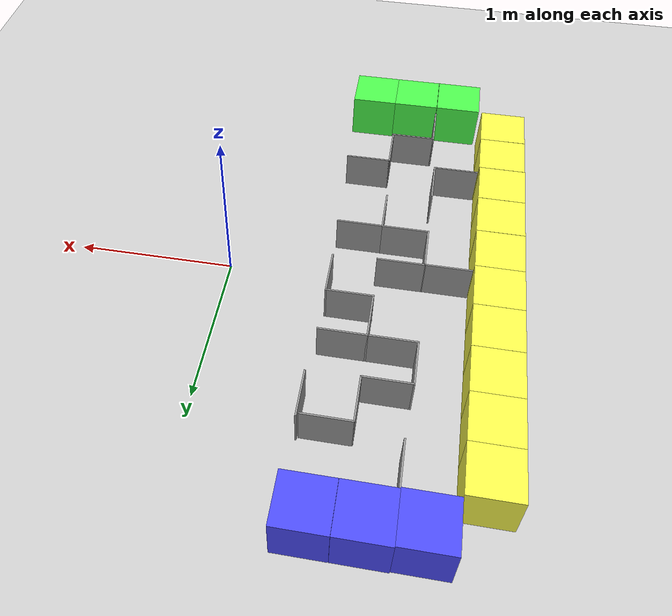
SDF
<sdf version="1.6">
 <world name="default">
  <model name="ground_plane">
   <static>1</static>
   <link name="link">
    <collision name="collision">
     <geometry><plane><normal>0 0 1</normal><size>100 100</size></plane></geometry>
     <surface><friction><ode><mu>100</mu><mu2>50</mu2></ode></friction></surface>
    </collision>
    <visual name="visual">
     <cast_shadows>0</cast_shadows>
     <geometry><plane><normal>0 0 1</normal><size>100 100</size></plane></geometry>
     <material>
      <script><uri>file://media/materials/scripts/gazebo.material</uri><name>Gazebo/Grey</name></script>
     </material>
    </visual>
   </link>
  </model>
  <model name="Box_Yellow">
   <link name="link_0">
    <inertial>
     <mass>1</mass>
     <inertia>
      <ixx>0.166667</ixx>
      <ixy>0</ixy>
      <ixz>0</ixz>
      <iyy>0.166667</iyy>
      <iyz>0</iyz>
      <izz>0.166667</izz>
     </inertia>
    </inertial>
    <visual name="visual">
     <geometry><box><size>0.3 0.3 0.3</size></box></geometry>
     <material>
      <lighting>1</lighting>
      <script><uri>file://media/materials/scripts/gazebo.material</uri><name>Gazebo/Grey</name></script>
      <ambient>1 1 0.3 1</ambient>
      <diffuse>0.7 0.7 0.7 1</diffuse>
      <specular>0.01 0.01 0.01 1</specular>
      <emissive>0 0 0 1</emissive>
      <shader type="vertex"><normal_map>__default__</normal_map></shader>
     </material>
    </visual>
    <collision name="collision">
     <geometry><box><size>0.3 0.3 0.3</size></box></geometry>
     <surface>
      <friction>
       <ode><mu>1</mu><mu2>1</mu2><fdir1>0 0 0</fdir1><slip1>0</slip1><slip2>0</slip2></ode>
       <torsional>
        <coefficient>1</coefficient>
        <patch_radius>0</patch_radius>
        <surface_radius>0</surface_radius>
        <use_patch_radius>1</use_patch_radius>
        <ode><slip>0</slip></ode>
       </torsional>
      </friction>
      <bounce><restitution_coefficient>0</restitution_coefficient><threshold>1e+06</threshold></bounce>
      <contact>
       <collide_without_contact>0</collide_without_contact>
       <collide_without_contact_bitmask>1</collide_without_contact_bitmask>
       <collide_bitmask>1</collide_bitmask>
       <ode>
        <soft_cfm>0</soft_cfm>
        <soft_erp>0.2</soft_erp>
        <kp>1e+13</kp>
        <kd>1</kd>
        <max_vel>0.01</max_vel>
        <min_depth>0</min_depth>
       </ode>
       <bullet>
        <split_impulse>1</split_impulse>
        <split_impulse_penetration_threshold>-0.01</split_impulse_penetration_threshold>
        <soft_cfm>0</soft_cfm>
        <soft_erp>0.2</soft_erp>
        <kp>1e+13</kp>
        <kd>1</kd>
       </bullet>
      </contact>
     </surface>
    </collision>
   </link>
   <static>0</static>
   <pose>-1.66342 -1.35735 0.15 0 -0 -0.001735</pose>
  </model>
  <model name="Box_Green_clone_5">
   <link name="link_0">
    <inertial>
     <mass>1</mass>
     <inertia>
      <ixx>0.166667</ixx>
      <ixy>0</ixy>
      <ixz>0</ixz>
      <iyy>0.166667</iyy>
      <iyz>0</iyz>
      <izz>0.166667</izz>
     </inertia>
    </inertial>
    <visual name="visual">
     <geometry><box><size>0.3 0.3 0.3</size></box></geometry>
     <material>
      <lighting>1</lighting>
      <script><uri>file://media/materials/scripts/gazebo.material</uri><name>Gazebo/Grey</name></script>
      <ambient>0.3 1 0.3 1</ambient>
      <diffuse>0.7 0.7 0.7 1</diffuse>
      <specular>0.01 0.01 0.01 1</specular>
      <emissive>0 0 0 1</emissive>
      <shader type="vertex"><normal_map>__default__</normal_map></shader>
     </material>
    </visual>
    <collision name="collision">
     <geometry><box><size>0.3 0.3 0.3</size></box></geometry>
     <surface>
      <friction>
       <ode><mu>1</mu><mu2>1</mu2><fdir1>0 0 0</fdir1><slip1>0</slip1><slip2>0</slip2></ode>
       <torsional>
        <coefficient>1</coefficient>
        <patch_radius>0</patch_radius>
        <surface_radius>0</surface_radius>
        <use_patch_radius>1</use_patch_radius>
        <ode><slip>0</slip></ode>
       </torsional>
      </friction>
      <bounce><restitution_coefficient>0</restitution_coefficient><threshold>1e+06</threshold></bounce>
      <contact>
       <collide_without_contact>0</collide_without_contact>
       <collide_without_contact_bitmask>1</collide_without_contact_bitmask>
       <collide_bitmask>1</collide_bitmask>
       <ode>
        <soft_cfm>0</soft_cfm>
        <soft_erp>0.2</soft_erp>
        <kp>1e+13</kp>
        <kd>1</kd>
        <max_vel>0.01</max_vel>
        <min_depth>0</min_depth>
       </ode>
       <bullet>
        <split_impulse>1</split_impulse>
        <split_impulse_penetration_threshold>-0.01</split_impulse_penetration_threshold>
        <soft_cfm>0</soft_cfm>
        <soft_erp>0.2</soft_erp>
        <kp>1e+13</kp>
        <kd>1</kd>
       </bullet>
      </contact>
     </surface>
    </collision>
   </link>
   <static>0</static>
   <pose>-0.740618 -1.65773 0.15 0 -0 0.000345</pose>
  </model>
  <model name="Box_Green_clone_6">
   <link name="link_0">
    <inertial>
     <mass>1</mass>
     <inertia>
      <ixx>0.166667</ixx>
      <ixy>0</ixy>
      <ixz>0</ixz>
      <iyy>0.166667</iyy>
      <iyz>0</iyz>
      <izz>0.166667</izz>
     </inertia>
    </inertial>
    <visual name="visual">
     <geometry><box><size>0.3 0.3 0.3</size></box></geometry>
     <material>
      <lighting>1</lighting>
      <script><uri>file://media/materials/scripts/gazebo.material</uri><name>Gazebo/Grey</name></script>
      <ambient>0.3 1 0.3 1</ambient>
      <diffuse>0.7 0.7 0.7 1</diffuse>
      <specular>0.01 0.01 0.01 1</specular>
      <emissive>0 0 0 1</emissive>
      <shader type="vertex"><normal_map>__default__</normal_map></shader>
     </material>
    </visual>
    <collision name="collision">
     <geometry><box><size>0.3 0.3 0.3</size></box></geometry>
     <surface>
      <friction>
       <ode><mu>1</mu><mu2>1</mu2><fdir1>0 0 0</fdir1><slip1>0</slip1><slip2>0</slip2></ode>
       <torsional>
        <coefficient>1</coefficient>
        <patch_radius>0</patch_radius>
        <surface_radius>0</surface_radius>
        <use_patch_radius>1</use_patch_radius>
        <ode><slip>0</slip></ode>
       </torsional>
      </friction>
      <bounce><restitution_coefficient>0</restitution_coefficient><threshold>1e+06</threshold></bounce>
      <contact>
       <collide_without_contact>0</collide_without_contact>
       <collide_without_contact_bitmask>1</collide_without_contact_bitmask>
       <collide_bitmask>1</collide_bitmask>
       <ode>
        <soft_cfm>0</soft_cfm>
        <soft_erp>0.2</soft_erp>
        <kp>1e+13</kp>
        <kd>1</kd>
        <max_vel>0.01</max_vel>
        <min_depth>0</min_depth>
       </ode>
       <bullet>
        <split_impulse>1</split_impulse>
        <split_impulse_penetration_threshold>-0.01</split_impulse_penetration_threshold>
        <soft_cfm>0</soft_cfm>
        <soft_erp>0.2</soft_erp>
        <kp>1e+13</kp>
        <kd>1</kd>
       </bullet>
      </contact>
     </surface>
    </collision>
   </link>
   <static>0</static>
   <pose>-1.04062 -1.65808 0.15 0 -0 0.000344</pose>
  </model>
  <model name="Box_Yellow_clone">
   <link name="link_0">
    <inertial>
     <mass>1</mass>
     <inertia>
      <ixx>0.166667</ixx>
      <ixy>0</ixy>
      <ixz>0</ixz>
      <iyy>0.166667</iyy>
      <iyz>0</iyz>
      <izz>0.166667</izz>
     </inertia>
    </inertial>
    <visual name="visual">
     <geometry><box><size>0.3 0.3 0.3</size></box></geometry>
     <material>
      <lighting>1</lighting>
      <script><uri>file://media/materials/scripts/gazebo.material</uri><name>Gazebo/Grey</name></script>
      <ambient>1 1 0.3 1</ambient>
      <diffuse>0.7 0.7 0.7 1</diffuse>
      <specular>0.01 0.01 0.01 1</specular>
      <emissive>0 0 0 1</emissive>
      <shader type="vertex"><normal_map>__default__</normal_map></shader>
     </material>
    </visual>
    <collision name="collision">
     <geometry><box><size>0.3 0.3 0.3</size></box></geometry>
     <surface>
      <friction>
       <ode><mu>1</mu><mu2>1</mu2><fdir1>0 0 0</fdir1><slip1>0</slip1><slip2>0</slip2></ode>
       <torsional>
        <coefficient>1</coefficient>
        <patch_radius>0</patch_radius>
        <surface_radius>0</surface_radius>
        <use_patch_radius>1</use_patch_radius>
        <ode><slip>0</slip></ode>
       </torsional>
      </friction>
      <bounce><restitution_coefficient>0</restitution_coefficient><threshold>1e+06</threshold></bounce>
      <contact>
       <collide_without_contact>0</collide_without_contact>
       <collide_without_contact_bitmask>1</collide_without_contact_bitmask>
       <collide_bitmask>1</collide_bitmask>
       <ode>
        <soft_cfm>0</soft_cfm>
        <soft_erp>0.2</soft_erp>
        <kp>1e+13</kp>
        <kd>1</kd>
        <max_vel>0.01</max_vel>
        <min_depth>0</min_depth>
       </ode>
       <bullet>
        <split_impulse>1</split_impulse>
        <split_impulse_penetration_threshold>-0.01</split_impulse_penetration_threshold>
        <soft_cfm>0</soft_cfm>
        <soft_erp>0.2</soft_erp>
        <kp>1e+13</kp>
        <kd>1</kd>
       </bullet>
      </contact>
     </surface>
    </collision>
   </link>
   <static>0</static>
   <pose>-1.66313 -1.05692 0.15 0 0 -0.004486</pose>
  </model>
  <model name="Box_Yellow_clone_0">
   <link name="link_0">
    <inertial>
     <mass>1</mass>
     <inertia>
      <ixx>0.166667</ixx>
      <ixy>0</ixy>
      <ixz>0</ixz>
      <iyy>0.166667</iyy>
      <iyz>0</iyz>
      <izz>0.166667</izz>
     </inertia>
    </inertial>
    <visual name="visual">
     <geometry><box><size>0.3 0.3 0.3</size></box></geometry>
     <material>
      <lighting>1</lighting>
      <script><uri>file://media/materials/scripts/gazebo.material</uri><name>Gazebo/Grey</name></script>
      <ambient>1 1 0.3 1</ambient>
      <diffuse>0.7 0.7 0.7 1</diffuse>
      <specular>0.01 0.01 0.01 1</specular>
      <emissive>0 0 0 1</emissive>
      <shader type="vertex"><normal_map>__default__</normal_map></shader>
     </material>
    </visual>
    <collision name="collision">
     <geometry><box><size>0.3 0.3 0.3</size></box></geometry>
     <surface>
      <friction>
       <ode><mu>1</mu><mu2>1</mu2><fdir1>0 0 0</fdir1><slip1>0</slip1><slip2>0</slip2></ode>
       <torsional>
        <coefficient>1</coefficient>
        <patch_radius>0</patch_radius>
        <surface_radius>0</surface_radius>
        <use_patch_radius>1</use_patch_radius>
        <ode><slip>0</slip></ode>
       </torsional>
      </friction>
      <bounce><restitution_coefficient>0</restitution_coefficient><threshold>1e+06</threshold></bounce>
      <contact>
       <collide_without_contact>0</collide_without_contact>
       <collide_without_contact_bitmask>1</collide_without_contact_bitmask>
       <collide_bitmask>1</collide_bitmask>
       <ode>
        <soft_cfm>0</soft_cfm>
        <soft_erp>0.2</soft_erp>
        <kp>1e+13</kp>
        <kd>1</kd>
        <max_vel>0.01</max_vel>
        <min_depth>0</min_depth>
       </ode>
       <bullet>
        <split_impulse>1</split_impulse>
        <split_impulse_penetration_threshold>-0.01</split_impulse_penetration_threshold>
        <soft_cfm>0</soft_cfm>
        <soft_erp>0.2</soft_erp>
        <kp>1e+13</kp>
        <kd>1</kd>
       </bullet>
      </contact>
     </surface>
    </collision>
   </link>
   <static>0</static>
   <pose>-1.66556 -0.756814 0.15 -0 -0 -0.005116</pose>
  </model>
  <model name="Box_Yellow_clone_1">
   <link name="link_0">
    <inertial>
     <mass>1</mass>
     <inertia>
      <ixx>0.166667</ixx>
      <ixy>0</ixy>
      <ixz>0</ixz>
      <iyy>0.166667</iyy>
      <iyz>0</iyz>
      <izz>0.166667</izz>
     </inertia>
    </inertial>
    <visual name="visual">
     <geometry><box><size>0.3 0.3 0.3</size></box></geometry>
     <material>
      <lighting>1</lighting>
      <script><uri>file://media/materials/scripts/gazebo.material</uri><name>Gazebo/Grey</name></script>
      <ambient>1 1 0.3 1</ambient>
      <diffuse>0.7 0.7 0.7 1</diffuse>
      <specular>0.01 0.01 0.01 1</specular>
      <emissive>0 0 0 1</emissive>
      <shader type="vertex"><normal_map>__default__</normal_map></shader>
     </material>
    </visual>
    <collision name="collision">
     <geometry><box><size>0.3 0.3 0.3</size></box></geometry>
     <surface>
      <friction>
       <ode><mu>1</mu><mu2>1</mu2><fdir1>0 0 0</fdir1><slip1>0</slip1><slip2>0</slip2></ode>
       <torsional>
        <coefficient>1</coefficient>
        <patch_radius>0</patch_radius>
        <surface_radius>0</surface_radius>
        <use_patch_radius>1</use_patch_radius>
        <ode><slip>0</slip></ode>
       </torsional>
      </friction>
      <bounce><restitution_coefficient>0</restitution_coefficient><threshold>1e+06</threshold></bounce>
      <contact>
       <collide_without_contact>0</collide_without_contact>
       <collide_without_contact_bitmask>1</collide_without_contact_bitmask>
       <collide_bitmask>1</collide_bitmask>
       <ode>
        <soft_cfm>0</soft_cfm>
        <soft_erp>0.2</soft_erp>
        <kp>1e+13</kp>
        <kd>1</kd>
        <max_vel>0.01</max_vel>
        <min_depth>0</min_depth>
       </ode>
       <bullet>
        <split_impulse>1</split_impulse>
        <split_impulse_penetration_threshold>-0.01</split_impulse_penetration_threshold>
        <soft_cfm>0</soft_cfm>
        <soft_erp>0.2</soft_erp>
        <kp>1e+13</kp>
        <kd>1</kd>
       </bullet>
      </contact>
     </surface>
    </collision>
   </link>
   <static>0</static>
   <pose>-1.66358 -0.456605 0.15 0 -0 -0.003685</pose>
  </model>
  <model name="Box_Yellow_clone_2">
   <link name="link_0">
    <inertial>
     <mass>1</mass>
     <inertia>
      <ixx>0.166667</ixx>
      <ixy>0</ixy>
      <ixz>0</ixz>
      <iyy>0.166667</iyy>
      <iyz>0</iyz>
      <izz>0.166667</izz>
     </inertia>
    </inertial>
    <visual name="visual">
     <geometry><box><size>0.3 0.3 0.3</size></box></geometry>
     <material>
      <lighting>1</lighting>
      <script><uri>file://media/materials/scripts/gazebo.material</uri><name>Gazebo/Grey</name></script>
      <ambient>1 1 0.3 1</ambient>
      <diffuse>0.7 0.7 0.7 1</diffuse>
      <specular>0.01 0.01 0.01 1</specular>
      <emissive>0 0 0 1</emissive>
      <shader type="vertex"><normal_map>__default__</normal_map></shader>
     </material>
    </visual>
    <collision name="collision">
     <geometry><box><size>0.3 0.3 0.3</size></box></geometry>
     <surface>
      <friction>
       <ode><mu>1</mu><mu2>1</mu2><fdir1>0 0 0</fdir1><slip1>0</slip1><slip2>0</slip2></ode>
       <torsional>
        <coefficient>1</coefficient>
        <patch_radius>0</patch_radius>
        <surface_radius>0</surface_radius>
        <use_patch_radius>1</use_patch_radius>
        <ode><slip>0</slip></ode>
       </torsional>
      </friction>
      <bounce><restitution_coefficient>0</restitution_coefficient><threshold>1e+06</threshold></bounce>
      <contact>
       <collide_without_contact>0</collide_without_contact>
       <collide_without_contact_bitmask>1</collide_without_contact_bitmask>
       <collide_bitmask>1</collide_bitmask>
       <ode>
        <soft_cfm>0</soft_cfm>
        <soft_erp>0.2</soft_erp>
        <kp>1e+13</kp>
        <kd>1</kd>
        <max_vel>0.01</max_vel>
        <min_depth>0</min_depth>
       </ode>
       <bullet>
        <split_impulse>1</split_impulse>
        <split_impulse_penetration_threshold>-0.01</split_impulse_penetration_threshold>
        <soft_cfm>0</soft_cfm>
        <soft_erp>0.2</soft_erp>
        <kp>1e+13</kp>
        <kd>1</kd>
       </bullet>
      </contact>
     </surface>
    </collision>
   </link>
   <static>0</static>
   <pose>-1.66351 -0.156388 0.15 -0 -0 -0.002256</pose>
  </model>
  <model name="Box_Yellow_clone_3">
   <link name="link_0">
    <inertial>
     <mass>1</mass>
     <inertia>
      <ixx>0.166667</ixx>
      <ixy>0</ixy>
      <ixz>0</ixz>
      <iyy>0.166667</iyy>
      <iyz>0</iyz>
      <izz>0.166667</izz>
     </inertia>
    </inertial>
    <visual name="visual">
     <geometry><box><size>0.3 0.3 0.3</size></box></geometry>
     <material>
      <lighting>1</lighting>
      <script><uri>file://media/materials/scripts/gazebo.material</uri><name>Gazebo/Grey</name></script>
      <ambient>1 1 0.3 1</ambient>
      <diffuse>0.7 0.7 0.7 1</diffuse>
      <specular>0.01 0.01 0.01 1</specular>
      <emissive>0 0 0 1</emissive>
      <shader type="vertex"><normal_map>__default__</normal_map></shader>
     </material>
    </visual>
    <collision name="collision">
     <geometry><box><size>0.3 0.3 0.3</size></box></geometry>
     <surface>
      <friction>
       <ode><mu>1</mu><mu2>1</mu2><fdir1>0 0 0</fdir1><slip1>0</slip1><slip2>0</slip2></ode>
       <torsional>
        <coefficient>1</coefficient>
        <patch_radius>0</patch_radius>
        <surface_radius>0</surface_radius>
        <use_patch_radius>1</use_patch_radius>
        <ode><slip>0</slip></ode>
       </torsional>
      </friction>
      <bounce><restitution_coefficient>0</restitution_coefficient><threshold>1e+06</threshold></bounce>
      <contact>
       <collide_without_contact>0</collide_without_contact>
       <collide_without_contact_bitmask>1</collide_without_contact_bitmask>
       <collide_bitmask>1</collide_bitmask>
       <ode>
        <soft_cfm>0</soft_cfm>
        <soft_erp>0.2</soft_erp>
        <kp>1e+13</kp>
        <kd>1</kd>
        <max_vel>0.01</max_vel>
        <min_depth>0</min_depth>
       </ode>
       <bullet>
        <split_impulse>1</split_impulse>
        <split_impulse_penetration_threshold>-0.01</split_impulse_penetration_threshold>
        <soft_cfm>0</soft_cfm>
        <soft_erp>0.2</soft_erp>
        <kp>1e+13</kp>
        <kd>1</kd>
       </bullet>
      </contact>
     </surface>
    </collision>
   </link>
   <static>0</static>
   <pose>-1.66285 0.143677 0.15 0 -0 -0.001826</pose>
  </model>
  <model name="Box_Yellow_clone_4">
   <link name="link_0">
    <inertial>
     <mass>1</mass>
     <inertia>
      <ixx>0.166667</ixx>
      <ixy>0</ixy>
      <ixz>0</ixz>
      <iyy>0.166667</iyy>
      <iyz>0</iyz>
      <izz>0.166667</izz>
     </inertia>
    </inertial>
    <visual name="visual">
     <geometry><box><size>0.3 0.3 0.3</size></box></geometry>
     <material>
      <lighting>1</lighting>
      <script><uri>file://media/materials/scripts/gazebo.material</uri><name>Gazebo/Grey</name></script>
      <ambient>1 1 0.3 1</ambient>
      <diffuse>0.7 0.7 0.7 1</diffuse>
      <specular>0.01 0.01 0.01 1</specular>
      <emissive>0 0 0 1</emissive>
      <shader type="vertex"><normal_map>__default__</normal_map></shader>
     </material>
    </visual>
    <collision name="collision">
     <geometry><box><size>0.3 0.3 0.3</size></box></geometry>
     <surface>
      <friction>
       <ode><mu>1</mu><mu2>1</mu2><fdir1>0 0 0</fdir1><slip1>0</slip1><slip2>0</slip2></ode>
       <torsional>
        <coefficient>1</coefficient>
        <patch_radius>0</patch_radius>
        <surface_radius>0</surface_radius>
        <use_patch_radius>1</use_patch_radius>
        <ode><slip>0</slip></ode>
       </torsional>
      </friction>
      <bounce><restitution_coefficient>0</restitution_coefficient><threshold>1e+06</threshold></bounce>
      <contact>
       <collide_without_contact>0</collide_without_contact>
       <collide_without_contact_bitmask>1</collide_without_contact_bitmask>
       <collide_bitmask>1</collide_bitmask>
       <ode>
        <soft_cfm>0</soft_cfm>
        <soft_erp>0.2</soft_erp>
        <kp>1e+13</kp>
        <kd>1</kd>
        <max_vel>0.01</max_vel>
        <min_depth>0</min_depth>
       </ode>
       <bullet>
        <split_impulse>1</split_impulse>
        <split_impulse_penetration_threshold>-0.01</split_impulse_penetration_threshold>
        <soft_cfm>0</soft_cfm>
        <soft_erp>0.2</soft_erp>
        <kp>1e+13</kp>
        <kd>1</kd>
       </bullet>
      </contact>
     </surface>
    </collision>
   </link>
   <static>0</static>
   <pose>-1.66277 0.443739 0.149998 -5e-06 7e-06 -0.001463</pose>
  </model>
  <model name="Box_Yellow_clone_5">
   <link name="link_0">
    <inertial>
     <mass>1</mass>
     <inertia>
      <ixx>0.166667</ixx>
      <ixy>0</ixy>
      <ixz>0</ixz>
      <iyy>0.166667</iyy>
      <iyz>0</iyz>
      <izz>0.166667</izz>
     </inertia>
    </inertial>
    <visual name="visual">
     <geometry><box><size>0.3 0.3 0.3</size></box></geometry>
     <material>
      <lighting>1</lighting>
      <script><uri>file://media/materials/scripts/gazebo.material</uri><name>Gazebo/Grey</name></script>
      <ambient>1 1 0.3 1</ambient>
      <diffuse>0.7 0.7 0.7 1</diffuse>
      <specular>0.01 0.01 0.01 1</specular>
      <emissive>0 0 0 1</emissive>
      <shader type="vertex"><normal_map>__default__</normal_map></shader>
     </material>
    </visual>
    <collision name="collision">
     <geometry><box><size>0.3 0.3 0.3</size></box></geometry>
     <surface>
      <friction>
       <ode><mu>1</mu><mu2>1</mu2><fdir1>0 0 0</fdir1><slip1>0</slip1><slip2>0</slip2></ode>
       <torsional>
        <coefficient>1</coefficient>
        <patch_radius>0</patch_radius>
        <surface_radius>0</surface_radius>
        <use_patch_radius>1</use_patch_radius>
        <ode><slip>0</slip></ode>
       </torsional>
      </friction>
      <bounce><restitution_coefficient>0</restitution_coefficient><threshold>1e+06</threshold></bounce>
      <contact>
       <collide_without_contact>0</collide_without_contact>
       <collide_without_contact_bitmask>1</collide_without_contact_bitmask>
       <collide_bitmask>1</collide_bitmask>
       <ode>
        <soft_cfm>0</soft_cfm>
        <soft_erp>0.2</soft_erp>
        <kp>1e+13</kp>
        <kd>1</kd>
        <max_vel>0.01</max_vel>
        <min_depth>0</min_depth>
       </ode>
       <bullet>
        <split_impulse>1</split_impulse>
        <split_impulse_penetration_threshold>-0.01</split_impulse_penetration_threshold>
        <soft_cfm>0</soft_cfm>
        <soft_erp>0.2</soft_erp>
        <kp>1e+13</kp>
        <kd>1</kd>
       </bullet>
      </contact>
     </surface>
    </collision>
   </link>
   <static>0</static>
   <pose>-1.66285 0.743811 0.15 0 -0 -0.001002</pose>
  </model>
  <model name="Box_Yellow_clone_6">
   <link name="link_0">
    <inertial>
     <mass>1</mass>
     <inertia>
      <ixx>0.166667</ixx>
      <ixy>0</ixy>
      <ixz>0</ixz>
      <iyy>0.166667</iyy>
      <iyz>0</iyz>
      <izz>0.166667</izz>
     </inertia>
    </inertial>
    <visual name="visual">
     <geometry><box><size>0.3 0.3 0.3</size></box></geometry>
     <material>
      <lighting>1</lighting>
      <script><uri>file://media/materials/scripts/gazebo.material</uri><name>Gazebo/Grey</name></script>
      <ambient>1 1 0.3 1</ambient>
      <diffuse>0.7 0.7 0.7 1</diffuse>
      <specular>0.01 0.01 0.01 1</specular>
      <emissive>0 0 0 1</emissive>
      <shader type="vertex"><normal_map>__default__</normal_map></shader>
     </material>
    </visual>
    <collision name="collision">
     <geometry><box><size>0.3 0.3 0.3</size></box></geometry>
     <surface>
      <friction>
       <ode><mu>1</mu><mu2>1</mu2><fdir1>0 0 0</fdir1><slip1>0</slip1><slip2>0</slip2></ode>
       <torsional>
        <coefficient>1</coefficient>
        <patch_radius>0</patch_radius>
        <surface_radius>0</surface_radius>
        <use_patch_radius>1</use_patch_radius>
        <ode><slip>0</slip></ode>
       </torsional>
      </friction>
      <bounce><restitution_coefficient>0</restitution_coefficient><threshold>1e+06</threshold></bounce>
      <contact>
       <collide_without_contact>0</collide_without_contact>
       <collide_without_contact_bitmask>1</collide_without_contact_bitmask>
       <collide_bitmask>1</collide_bitmask>
       <ode>
        <soft_cfm>0</soft_cfm>
        <soft_erp>0.2</soft_erp>
        <kp>1e+13</kp>
        <kd>1</kd>
        <max_vel>0.01</max_vel>
        <min_depth>0</min_depth>
       </ode>
       <bullet>
        <split_impulse>1</split_impulse>
        <split_impulse_penetration_threshold>-0.01</split_impulse_penetration_threshold>
        <soft_cfm>0</soft_cfm>
        <soft_erp>0.2</soft_erp>
        <kp>1e+13</kp>
        <kd>1</kd>
       </bullet>
      </contact>
     </surface>
    </collision>
   </link>
   <static>0</static>
   <pose>-1.66287 1.04381 0.15 -0 -0 -0.001002</pose>
  </model>
  <model name="Box_Yellow_clone_7">
   <link name="link_0">
    <inertial>
     <mass>1</mass>
     <inertia>
      <ixx>0.166667</ixx>
      <ixy>0</ixy>
      <ixz>0</ixz>
      <iyy>0.166667</iyy>
      <iyz>0</iyz>
      <izz>0.166667</izz>
     </inertia>
    </inertial>
    <visual name="visual">
     <geometry><box><size>0.3 0.3 0.3</size></box></geometry>
     <material>
      <lighting>1</lighting>
      <script><uri>file://media/materials/scripts/gazebo.material</uri><name>Gazebo/Grey</name></script>
      <ambient>1 1 0.3 1</ambient>
      <diffuse>0.7 0.7 0.7 1</diffuse>
      <specular>0.01 0.01 0.01 1</specular>
      <emissive>0 0 0 1</emissive>
      <shader type="vertex"><normal_map>__default__</normal_map></shader>
     </material>
    </visual>
    <collision name="collision">
     <geometry><box><size>0.3 0.3 0.3</size></box></geometry>
     <surface>
      <friction>
       <ode><mu>1</mu><mu2>1</mu2><fdir1>0 0 0</fdir1><slip1>0</slip1><slip2>0</slip2></ode>
       <torsional>
        <coefficient>1</coefficient>
        <patch_radius>0</patch_radius>
        <surface_radius>0</surface_radius>
        <use_patch_radius>1</use_patch_radius>
        <ode><slip>0</slip></ode>
       </torsional>
      </friction>
      <bounce><restitution_coefficient>0</restitution_coefficient><threshold>1e+06</threshold></bounce>
      <contact>
       <collide_without_contact>0</collide_without_contact>
       <collide_without_contact_bitmask>1</collide_without_contact_bitmask>
       <collide_bitmask>1</collide_bitmask>
       <ode>
        <soft_cfm>0</soft_cfm>
        <soft_erp>0.2</soft_erp>
        <kp>1e+13</kp>
        <kd>1</kd>
        <max_vel>0.01</max_vel>
        <min_depth>0</min_depth>
       </ode>
       <bullet>
        <split_impulse>1</split_impulse>
        <split_impulse_penetration_threshold>-0.01</split_impulse_penetration_threshold>
        <soft_cfm>0</soft_cfm>
        <soft_erp>0.2</soft_erp>
        <kp>1e+13</kp>
        <kd>1</kd>
       </bullet>
      </contact>
     </surface>
    </collision>
   </link>
   <static>0</static>
   <pose>-1.66267 1.34384 0.15 -0 -0 -0.000887</pose>
  </model>
  <model name="Box_Blue_clone_5">
   <link name="link_0">
    <inertial>
     <mass>1</mass>
     <inertia>
      <ixx>0.166667</ixx>
      <ixy>0</ixy>
      <ixz>0</ixz>
      <iyy>0.166667</iyy>
      <iyz>0</iyz>
      <izz>0.166667</izz>
     </inertia>
    </inertial>
    <visual name="visual">
     <geometry><box><size>0.3 0.3 0.3</size></box></geometry>
     <material>
      <lighting>1</lighting>
      <script><uri>file://media/materials/scripts/gazebo.material</uri><name>Gazebo/Grey</name></script>
      <ambient>0.3 0.3 1 1</ambient>
      <diffuse>0.7 0.7 0.7 1</diffuse>
      <specular>0.01 0.01 0.01 1</specular>
      <emissive>0 0 0 1</emissive>
      <shader type="vertex"><normal_map>__default__</normal_map></shader>
     </material>
    </visual>
    <collision name="collision">
     <geometry><box><size>0.3 0.3 0.3</size></box></geometry>
     <surface>
      <friction>
       <ode><mu>1</mu><mu2>1</mu2><fdir1>0 0 0</fdir1><slip1>0</slip1><slip2>0</slip2></ode>
       <torsional>
        <coefficient>1</coefficient>
        <patch_radius>0</patch_radius>
        <surface_radius>0</surface_radius>
        <use_patch_radius>1</use_patch_radius>
        <ode><slip>0</slip></ode>
       </torsional>
      </friction>
      <bounce><restitution_coefficient>0</restitution_coefficient><threshold>1e+06</threshold></bounce>
      <contact>
       <collide_without_contact>0</collide_without_contact>
       <collide_without_contact_bitmask>1</collide_without_contact_bitmask>
       <collide_bitmask>1</collide_bitmask>
       <ode>
        <soft_cfm>0</soft_cfm>
        <soft_erp>0.2</soft_erp>
        <kp>1e+13</kp>
        <kd>1</kd>
        <max_vel>0.01</max_vel>
        <min_depth>0</min_depth>
       </ode>
       <bullet>
        <split_impulse>1</split_impulse>
        <split_impulse_penetration_threshold>-0.01</split_impulse_penetration_threshold>
        <soft_cfm>0</soft_cfm>
        <soft_erp>0.2</soft_erp>
        <kp>1e+13</kp>
        <kd>1</kd>
       </bullet>
      </contact>
     </surface>
    </collision>
   </link>
   <static>0</static>
   <pose>-0.759835 1.66238 0.15 -2e-06 -2e-06 0.001501</pose>
  </model>
  <model name="Box_Blue_clone_6">
   <link name="link_0">
    <inertial>
     <mass>1</mass>
     <inertia>
      <ixx>0.166667</ixx>
      <ixy>0</ixy>
      <ixz>0</ixz>
      <iyy>0.166667</iyy>
      <iyz>0</iyz>
      <izz>0.166667</izz>
     </inertia>
    </inertial>
    <visual name="visual">
     <geometry><box><size>0.3 0.3 0.3</size></box></geometry>
     <material>
      <lighting>1</lighting>
      <script><uri>file://media/materials/scripts/gazebo.material</uri><name>Gazebo/Grey</name></script>
      <ambient>0.3 0.3 1 1</ambient>
      <diffuse>0.7 0.7 0.7 1</diffuse>
      <specular>0.01 0.01 0.01 1</specular>
      <emissive>0 0 0 1</emissive>
      <shader type="vertex"><normal_map>__default__</normal_map></shader>
     </material>
    </visual>
    <collision name="collision">
     <geometry><box><size>0.3 0.3 0.3</size></box></geometry>
     <surface>
      <friction>
       <ode><mu>1</mu><mu2>1</mu2><fdir1>0 0 0</fdir1><slip1>0</slip1><slip2>0</slip2></ode>
       <torsional>
        <coefficient>1</coefficient>
        <patch_radius>0</patch_radius>
        <surface_radius>0</surface_radius>
        <use_patch_radius>1</use_patch_radius>
        <ode><slip>0</slip></ode>
       </torsional>
      </friction>
      <bounce><restitution_coefficient>0</restitution_coefficient><threshold>1e+06</threshold></bounce>
      <contact>
       <collide_without_contact>0</collide_without_contact>
       <collide_without_contact_bitmask>1</collide_without_contact_bitmask>
       <collide_bitmask>1</collide_bitmask>
       <ode>
        <soft_cfm>0</soft_cfm>
        <soft_erp>0.2</soft_erp>
        <kp>1e+13</kp>
        <kd>1</kd>
        <max_vel>0.01</max_vel>
        <min_depth>0</min_depth>
       </ode>
       <bullet>
        <split_impulse>1</split_impulse>
        <split_impulse_penetration_threshold>-0.01</split_impulse_penetration_threshold>
        <soft_cfm>0</soft_cfm>
        <soft_erp>0.2</soft_erp>
        <kp>1e+13</kp>
        <kd>1</kd>
       </bullet>
      </contact>
     </surface>
    </collision>
   </link>
   <static>0</static>
   <pose>-1.06049 1.6615 0.15 0 -0 0.001043</pose>
  </model>
  <model name="Box_Blue_clone_7">
   <link name="link_0">
    <inertial>
     <mass>1</mass>
     <inertia>
      <ixx>0.166667</ixx>
      <ixy>0</ixy>
      <ixz>0</ixz>
      <iyy>0.166667</iyy>
      <iyz>0</iyz>
      <izz>0.166667</izz>
     </inertia>
    </inertial>
    <visual name="visual">
     <geometry><box><size>0.3 0.3 0.3</size></box></geometry>
     <material>
      <lighting>1</lighting>
      <script><uri>file://media/materials/scripts/gazebo.material</uri><name>Gazebo/Grey</name></script>
      <ambient>0.3 0.3 1 1</ambient>
      <diffuse>0.7 0.7 0.7 1</diffuse>
      <specular>0.01 0.01 0.01 1</specular>
      <emissive>0 0 0 1</emissive>
      <shader type="vertex"><normal_map>__default__</normal_map></shader>
     </material>
    </visual>
    <collision name="collision">
     <geometry><box><size>0.3 0.3 0.3</size></box></geometry>
     <surface>
      <friction>
       <ode><mu>1</mu><mu2>1</mu2><fdir1>0 0 0</fdir1><slip1>0</slip1><slip2>0</slip2></ode>
       <torsional>
        <coefficient>1</coefficient>
        <patch_radius>0</patch_radius>
        <surface_radius>0</surface_radius>
        <use_patch_radius>1</use_patch_radius>
        <ode><slip>0</slip></ode>
       </torsional>
      </friction>
      <bounce><restitution_coefficient>0</restitution_coefficient><threshold>1e+06</threshold></bounce>
      <contact>
       <collide_without_contact>0</collide_without_contact>
       <collide_without_contact_bitmask>1</collide_without_contact_bitmask>
       <collide_bitmask>1</collide_bitmask>
       <ode>
        <soft_cfm>0</soft_cfm>
        <soft_erp>0.2</soft_erp>
        <kp>1e+13</kp>
        <kd>1</kd>
        <max_vel>0.01</max_vel>
        <min_depth>0</min_depth>
       </ode>
       <bullet>
        <split_impulse>1</split_impulse>
        <split_impulse_penetration_threshold>-0.01</split_impulse_penetration_threshold>
        <soft_cfm>0</soft_cfm>
        <soft_erp>0.2</soft_erp>
        <kp>1e+13</kp>
        <kd>1</kd>
       </bullet>
      </contact>
     </surface>
    </collision>
   </link>
   <static>0</static>
   <pose>-1.36054 1.65526 0.15 0 -0 0.001058</pose>
  </model>
  <model name="Box_Green_clone_7">
   <link name="link_0">
    <inertial>
     <mass>1</mass>
     <inertia>
      <ixx>0.166667</ixx>
      <ixy>0</ixy>
      <ixz>0</ixz>
      <iyy>0.166667</iyy>
      <iyz>0</iyz>
      <izz>0.166667</izz>
     </inertia>
    </inertial>
    <visual name="visual">
     <geometry><box><size>0.3 0.3 0.3</size></box></geometry>
     <material>
      <lighting>1</lighting>
      <script><uri>file://media/materials/scripts/gazebo.material</uri><name>Gazebo/Grey</name></script>
      <ambient>0.3 1 0.3 1</ambient>
      <diffuse>0.7 0.7 0.7 1</diffuse>
      <specular>0.01 0.01 0.01 1</specular>
      <emissive>0 0 0 1</emissive>
      <shader type="vertex"><normal_map>__default__</normal_map></shader>
     </material>
    </visual>
    <collision name="collision">
     <geometry><box><size>0.3 0.3 0.3</size></box></geometry>
     <surface>
      <friction>
       <ode><mu>1</mu><mu2>1</mu2><fdir1>0 0 0</fdir1><slip1>0</slip1><slip2>0</slip2></ode>
       <torsional>
        <coefficient>1</coefficient>
        <patch_radius>0</patch_radius>
        <surface_radius>0</surface_radius>
        <use_patch_radius>1</use_patch_radius>
        <ode><slip>0</slip></ode>
       </torsional>
      </friction>
      <bounce><restitution_coefficient>0</restitution_coefficient><threshold>1e+06</threshold></bounce>
      <contact>
       <collide_without_contact>0</collide_without_contact>
       <collide_without_contact_bitmask>1</collide_without_contact_bitmask>
       <collide_bitmask>1</collide_bitmask>
       <ode>
        <soft_cfm>0</soft_cfm>
        <soft_erp>0.2</soft_erp>
        <kp>1e+13</kp>
        <kd>1</kd>
        <max_vel>0.01</max_vel>
        <min_depth>0</min_depth>
       </ode>
       <bullet>
        <split_impulse>1</split_impulse>
        <split_impulse_penetration_threshold>-0.01</split_impulse_penetration_threshold>
        <soft_cfm>0</soft_cfm>
        <soft_erp>0.2</soft_erp>
        <kp>1e+13</kp>
        <kd>1</kd>
       </bullet>
      </contact>
     </surface>
    </collision>
   </link>
   <static>0</static>
   <pose>-1.34247 -1.65973 0.15 0 -0 -0.000195</pose>
  </model>
  <model name="Maze_L_RU">
   <pose>-1.36417 -0.767498 0 0 -0 0</pose>
   <link name="Wall_11">
    <collision name="Wall_11_Collision">
     <geometry><box><size>0.294 0.01 0.25</size></box></geometry>
     <pose>0 0 0.125 0 -0 0</pose>
    </collision>
    <visual name="Wall_11_Visual">
     <pose>0 0 0.125 0 -0 0</pose>
     <geometry><box><size>0.294 0.01 0.25</size></box></geometry>
     <material>
      <script><uri>file://media/materials/scripts/gazebo.material</uri><name>Gazebo/Grey</name></script>
      <ambient>1 1 1 1</ambient>
     </material>
     <meta><layer>0</layer></meta>
    </visual>
    <pose>0 -0.142 0 0 -0 0</pose>
   </link>
   <link name="Wall_12">
    <collision name="Wall_12_Collision">
     <geometry><box><size>0.294 0.01 0.25</size></box></geometry>
     <pose>0 0 0.125 0 -0 0</pose>
    </collision>
    <visual name="Wall_12_Visual">
     <pose>0 0 0.125 0 -0 0</pose>
     <geometry><box><size>0.294 0.01 0.25</size></box></geometry>
     <material>
      <script><uri>file://media/materials/scripts/gazebo.material</uri><name>Gazebo/Grey</name></script>
      <ambient>1 1 1 1</ambient>
     </material>
     <meta><layer>0</layer></meta>
    </visual>
    <pose>0.142 0 0 0 -0 1.5708</pose>
   </link>
   <static>1</static>
  </model>
  <model name="Maze_L_LB">
   <pose>-0.798102 0.44384 0 0 -0 0</pose>
   <link name="Wall_0">
    <collision name="Wall_0_Collision">
     <geometry><box><size>0.294 0.01 0.25</size></box></geometry>
     <pose>0 0 0.125 0 -0 0</pose>
    </collision>
    <visual name="Wall_0_Visual">
     <pose>0 0 0.125 0 -0 0</pose>
     <geometry><box><size>0.294 0.01 0.25</size></box></geometry>
     <material>
      <script><uri>file://media/materials/scripts/gazebo.material</uri><name>Gazebo/Grey</name></script>
      <ambient>1 1 1 1</ambient>
     </material>
     <meta><layer>0</layer></meta>
    </visual>
    <pose>0 0.142 0 0 -0 0</pose>
   </link>
   <link name="Wall_2">
    <collision name="Wall_2_Collision">
     <geometry><box><size>0.294 0.01 0.25</size></box></geometry>
     <pose>0 0 0.125 0 -0 0</pose>
    </collision>
    <visual name="Wall_2_Visual">
     <pose>0 0 0.125 0 -0 0</pose>
     <geometry><box><size>0.294 0.01 0.25</size></box></geometry>
     <material>
      <script><uri>file://media/materials/scripts/gazebo.material</uri><name>Gazebo/Grey</name></script>
      <ambient>1 1 1 1</ambient>
     </material>
     <meta><layer>0</layer></meta>
    </visual>
    <pose>-0.142 0 0 0 0 -1.5708</pose>
   </link>
   <static>1</static>
  </model>
  <model name="Maze_L_LU">
   <pose>-1.36321 -0.14843 0 0 -0 0</pose>
   <link name="Wall_0">
    <collision name="Wall_0_Collision">
     <geometry><box><size>0.294 0.01 0.25</size></box></geometry>
     <pose>0 0 0.125 0 -0 0</pose>
    </collision>
    <visual name="Wall_0_Visual">
     <pose>0 0 0.125 0 -0 0</pose>
     <geometry><box><size>0.294 0.01 0.25</size></box></geometry>
     <material>
      <script><uri>file://media/materials/scripts/gazebo.material</uri><name>Gazebo/Grey</name></script>
      <ambient>1 1 1 1</ambient>
     </material>
     <meta><layer>0</layer></meta>
    </visual>
    <pose>0 0.142 0 0 -0 3.14159</pose>
   </link>
   <link name="Wall_2">
    <collision name="Wall_2_Collision">
     <geometry><box><size>0.294 0.01 0.25</size></box></geometry>
     <pose>0 0 0.125 0 -0 0</pose>
    </collision>
    <visual name="Wall_2_Visual">
     <pose>0 0 0.125 0 -0 0</pose>
     <geometry><box><size>0.294 0.01 0.25</size></box></geometry>
     <material>
      <script><uri>file://media/materials/scripts/gazebo.material</uri><name>Gazebo/Grey</name></script>
      <ambient>1 1 1 1</ambient>
     </material>
     <meta><layer>0</layer></meta>
    </visual>
    <pose>0.142 0 0 0 0 -1.5708</pose>
   </link>
   <static>1</static>
  </model>
  <model name="Maze_L_RB">
   <pose>-1.08633 0.727561 0 0 -0 0</pose>
   <link name="Wall_0">
    <collision name="Wall_0_Collision">
     <geometry><box><size>0.294 0.01 0.25</size></box></geometry>
     <pose>0 0 0.125 0 -0 0</pose>
    </collision>
    <visual name="Wall_0_Visual">
     <pose>0 0 0.125 0 -0 0</pose>
     <geometry><box><size>0.294 0.01 0.25</size></box></geometry>
     <material>
      <script><uri>file://media/materials/scripts/gazebo.material</uri><name>Gazebo/Grey</name></script>
      <ambient>1 1 1 1</ambient>
     </material>
     <meta><layer>0</layer></meta>
    </visual>
    <pose>0 -0.142 0 0 -0 0</pose>
   </link>
   <link name="Wall_2">
    <collision name="Wall_2_Collision">
     <geometry><box><size>0.294 0.01 0.25</size></box></geometry>
     <pose>0 0 0.125 0 -0 0</pose>
    </collision>
    <visual name="Wall_2_Visual">
     <pose>0 0 0.125 0 -0 0</pose>
     <geometry><box><size>0.294 0.01 0.25</size></box></geometry>
     <material>
      <script><uri>file://media/materials/scripts/gazebo.material</uri><name>Gazebo/Grey</name></script>
      <ambient>1 1 1 1</ambient>
     </material>
     <meta><layer>0</layer></meta>
    </visual>
    <pose>-0.142 0 0 0 -0 1.5708</pose>
   </link>
   <static>1</static>
  </model>
  <model name="Maze_I_H_clone_6">
   <pose>-1.20777 1.35352 0 0 -0 0</pose>
   <link name="Wall_0">
    <collision name="Wall_0_Collision">
     <geometry><box><size>0.294 0.01 0.25</size></box></geometry>
     <pose>0 0 0.125 0 -0 0</pose>
    </collision>
    <visual name="Wall_0_Visual">
     <pose>0 0 0.125 0 -0 0</pose>
     <geometry><box><size>0.294 0.01 0.25</size></box></geometry>
     <material>
      <script><uri>file://media/materials/scripts/gazebo.material</uri><name>Gazebo/Grey</name></script>
      <ambient>1 1 1 1</ambient>
     </material>
     <meta><layer>0</layer></meta>
    </visual>
    <pose>0 0 0 0 -0 1.5708</pose>
   </link>
   <static>1</static>
  </model>
  <model name="Maze_L_LB_clone_4">
   <pose>-1.04983 -1.35853 0 0 -0 0</pose>
   <link name="Wall_0">
    <collision name="Wall_0_Collision">
     <geometry><box><size>0.294 0.01 0.25</size></box></geometry>
     <pose>0 0 0.125 0 -0 0</pose>
    </collision>
    <visual name="Wall_0_Visual">
     <pose>0 0 0.125 0 -0 0</pose>
     <geometry><box><size>0.294 0.01 0.25</size></box></geometry>
     <material>
      <script><uri>file://media/materials/scripts/gazebo.material</uri><name>Gazebo/Grey</name></script>
      <ambient>1 1 1 1</ambient>
     </material>
     <meta><layer>0</layer></meta>
    </visual>
    <pose>0 0.142 0 0 -0 0</pose>
   </link>
   <link name="Wall_2">
    <collision name="Wall_2_Collision">
     <geometry><box><size>0.294 0.01 0.25</size></box></geometry>
     <pose>0 0 0.125 0 -0 0</pose>
    </collision>
    <visual name="Wall_2_Visual">
     <pose>0 0 0.125 0 -0 0</pose>
     <geometry><box><size>0.294 0.01 0.25</size></box></geometry>
     <material>
      <script><uri>file://media/materials/scripts/gazebo.material</uri><name>Gazebo/Grey</name></script>
      <ambient>1 1 1 1</ambient>
     </material>
     <meta><layer>0</layer></meta>
    </visual>
    <pose>-0.142 0 0 0 0 -1.5708</pose>
   </link>
   <static>1</static>
  </model>
  <model name="Maze_L_LB_clone_5">
   <pose>-0.767205 -1.07204 0 0 -0 0</pose>
   <link name="Wall_0">
    <collision name="Wall_0_Collision">
     <geometry><box><size>0.294 0.01 0.25</size></box></geometry>
     <pose>0 0 0.125 0 -0 0</pose>
    </collision>
    <visual name="Wall_0_Visual">
     <pose>0 0 0.125 0 -0 0</pose>
     <geometry><box><size>0.294 0.01 0.25</size></box></geometry>
     <material>
      <script><uri>file://media/materials/scripts/gazebo.material</uri><name>Gazebo/Grey</name></script>
      <ambient>1 1 1 1</ambient>
     </material>
     <meta><layer>0</layer></meta>
    </visual>
    <pose>0 0.142 0 0 -0 0</pose>
   </link>
   <link name="Wall_2">
    <collision name="Wall_2_Collision">
     <geometry><box><size>0.294 0.01 0.25</size></box></geometry>
     <pose>0 0 0.125 0 -0 0</pose>
    </collision>
    <visual name="Wall_2_Visual">
     <pose>0 0 0.125 0 -0 0</pose>
     <geometry><box><size>0.294 0.01 0.25</size></box></geometry>
     <material>
      <script><uri>file://media/materials/scripts/gazebo.material</uri><name>Gazebo/Grey</name></script>
      <ambient>1 1 1 1</ambient>
     </material>
     <meta><layer>0</layer></meta>
    </visual>
    <pose>-0.142 0 0 0 0 -1.5708</pose>
   </link>
   <static>1</static>
  </model>
  <model name="Maze_L_LB_clone_5_clone">
   <pose>-0.788521 -0.434448 0 0 -0 0</pose>
   <link name="Wall_0">
    <collision name="Wall_0_Collision">
     <geometry><box><size>0.294 0.01 0.25</size></box></geometry>
     <pose>0 0 0.125 0 -0 0</pose>
    </collision>
    <visual name="Wall_0_Visual">
     <pose>0 0 0.125 0 -0 0</pose>
     <geometry><box><size>0.294 0.01 0.25</size></box></geometry>
     <material>
      <script><uri>file://media/materials/scripts/gazebo.material</uri><name>Gazebo/Grey</name></script>
      <ambient>1 1 1 1</ambient>
     </material>
     <meta><layer>0</layer></meta>
    </visual>
    <pose>0 0.142 0 0 -0 0</pose>
   </link>
   <link name="Wall_2">
    <collision name="Wall_2_Collision">
     <geometry><box><size>0.294 0.01 0.25</size></box></geometry>
     <pose>0 0 0.125 0 -0 0</pose>
    </collision>
    <visual name="Wall_2_Visual">
     <pose>0 0 0.125 0 -0 0</pose>
     <geometry><box><size>0.294 0.01 0.25</size></box></geometry>
     <material>
      <script><uri>file://media/materials/scripts/gazebo.material</uri><name>Gazebo/Grey</name></script>
      <ambient>1 1 1 1</ambient>
     </material>
     <meta><layer>0</layer></meta>
    </visual>
    <pose>-0.142 0 0 0 0 -1.5708</pose>
   </link>
   <static>1</static>
  </model>
  <model name="Maze_I_V_clone_4">
   <pose>-1.07712 -0.291215 0 0 -0 0</pose>
   <link name="Wall_0">
    <collision name="Wall_0_Collision">
     <geometry><box><size>0.294 0.01 0.25</size></box></geometry>
     <pose>0 0 0.125 0 -0 0</pose>
    </collision>
    <visual name="Wall_0_Visual">
     <pose>0 0 0.125 0 -0 0</pose>
     <geometry><box><size>0.294 0.01 0.25</size></box></geometry>
     <material>
      <script><uri>file://media/materials/scripts/gazebo.material</uri><name>Gazebo/Grey</name></script>
      <ambient>1 1 1 1</ambient>
     </material>
     <meta><layer>0</layer></meta>
    </visual>
   </link>
   <static>1</static>
  </model>
  <model name="Maze_L_LU_clone_3">
   <pose>-0.799097 0.151299 0 0 -0 0</pose>
   <link name="Wall_0">
    <collision name="Wall_0_Collision">
     <geometry><box><size>0.294 0.01 0.25</size></box></geometry>
     <pose>0 0 0.125 0 -0 0</pose>
    </collision>
    <visual name="Wall_0_Visual">
     <pose>0 0 0.125 0 -0 0</pose>
     <geometry><box><size>0.294 0.01 0.25</size></box></geometry>
     <material>
      <script><uri>file://media/materials/scripts/gazebo.material</uri><name>Gazebo/Grey</name></script>
      <ambient>1 1 1 1</ambient>
     </material>
     <meta><layer>0</layer></meta>
    </visual>
    <pose>0 0.142 0 0 -0 3.14159</pose>
   </link>
   <link name="Wall_2">
    <collision name="Wall_2_Collision">
     <geometry><box><size>0.294 0.01 0.25</size></box></geometry>
     <pose>0 0 0.125 0 -0 0</pose>
    </collision>
    <visual name="Wall_2_Visual">
     <pose>0 0 0.125 0 -0 0</pose>
     <geometry><box><size>0.294 0.01 0.25</size></box></geometry>
     <material>
      <script><uri>file://media/materials/scripts/gazebo.material</uri><name>Gazebo/Grey</name></script>
      <ambient>1 1 1 1</ambient>
     </material>
     <meta><layer>0</layer></meta>
    </visual>
    <pose>0.142 0 0 0 0 -1.5708</pose>
   </link>
   <static>1</static>
  </model>
  <model name="Maze_L_RU_clone_2">
   <pose>-1.08127 1.01051 0 0 -0 0</pose>
   <link name="Wall_11">
    <collision name="Wall_11_Collision">
     <geometry><box><size>0.294 0.01 0.25</size></box></geometry>
     <pose>0 0 0.125 0 -0 0</pose>
    </collision>
    <visual name="Wall_11_Visual">
     <pose>0 0 0.125 0 -0 0</pose>
     <geometry><box><size>0.294 0.01 0.25</size></box></geometry>
     <material>
      <script><uri>file://media/materials/scripts/gazebo.material</uri><name>Gazebo/Grey</name></script>
      <ambient>1 1 1 1</ambient>
     </material>
     <meta><layer>0</layer></meta>
    </visual>
    <pose>0 -0.142 0 0 -0 0</pose>
   </link>
   <link name="Wall_12">
    <collision name="Wall_12_Collision">
     <geometry><box><size>0.294 0.01 0.25</size></box></geometry>
     <pose>0 0 0.125 0 -0 0</pose>
    </collision>
    <visual name="Wall_12_Visual">
     <pose>0 0 0.125 0 -0 0</pose>
     <geometry><box><size>0.294 0.01 0.25</size></box></geometry>
     <material>
      <script><uri>file://media/materials/scripts/gazebo.material</uri><name>Gazebo/Grey</name></script>
      <ambient>1 1 1 1</ambient>
     </material>
     <meta><layer>0</layer></meta>
    </visual>
    <pose>0.142 0 0 0 -0 1.5708</pose>
   </link>
   <static>1</static>
  </model>
  <model name="Maze_I_V_clone_2_clone">
   <pose>-0.792356 1.15388 0 0 -0 0</pose>
   <link name="Wall_0">
    <collision name="Wall_0_Collision">
     <geometry><box><size>0.294 0.01 0.25</size></box></geometry>
     <pose>0 0 0.125 0 -0 0</pose>
    </collision>
    <visual name="Wall_0_Visual">
     <pose>0 0 0.125 0 -0 0</pose>
     <geometry><box><size>0.294 0.01 0.25</size></box></geometry>
     <material>
      <script><uri>file://media/materials/scripts/gazebo.material</uri><name>Gazebo/Grey</name></script>
      <ambient>1 1 1 1</ambient>
     </material>
     <meta><layer>0</layer></meta>
    </visual>
   </link>
   <static>1</static>
  </model>
  <model name="Maze_I_V_clone_1_clone_clone_0_clone">
   <pose>-1.0742 -0.005207 0 0 -0 0</pose>
   <link name="Wall_0">
    <collision name="Wall_0_Collision">
     <geometry><box><size>0.294 0.01 0.25</size></box></geometry>
     <pose>0 0 0.125 0 -0 0</pose>
    </collision>
    <visual name="Wall_0_Visual">
     <pose>0 0 0.125 0 -0 0</pose>
     <geometry><box><size>0.294 0.01 0.25</size></box></geometry>
     <material>
      <script><uri>file://media/materials/scripts/gazebo.material</uri><name>Gazebo/Grey</name></script>
      <ambient>1 1 1 1</ambient>
     </material>
     <meta><layer>0</layer></meta>
    </visual>
   </link>
   <static>1</static>
  </model>
  <model name="Maze_I_H_clone_6_clone">
   <pose>-0.633145 1.02753 0 0 -0 0</pose>
   <link name="Wall_0">
    <collision name="Wall_0_Collision">
     <geometry><box><size>0.294 0.01 0.25</size></box></geometry>
     <pose>0 0 0.125 0 -0 0</pose>
    </collision>
    <visual name="Wall_0_Visual">
     <pose>0 0 0.125 0 -0 0</pose>
     <geometry><box><size>0.294 0.01 0.25</size></box></geometry>
     <material>
      <script><uri>file://media/materials/scripts/gazebo.material</uri><name>Gazebo/Grey</name></script>
      <ambient>1 1 1 1</ambient>
     </material>
     <meta><layer>0</layer></meta>
    </visual>
    <pose>0 0 0 0 -0 1.5708</pose>
   </link>
   <static>1</static>
  </model>
 </world>
</sdf>
